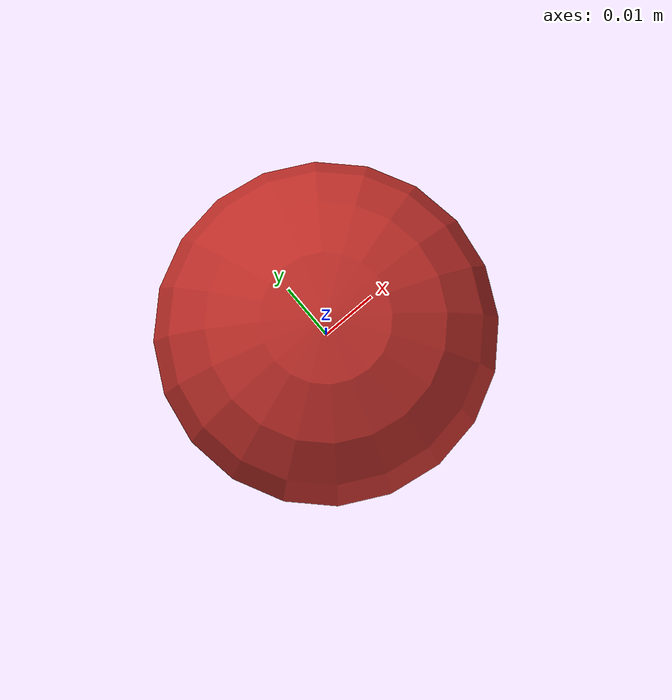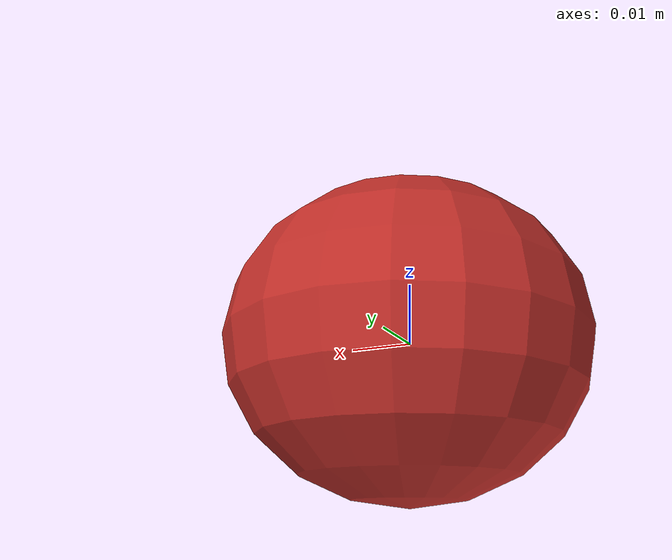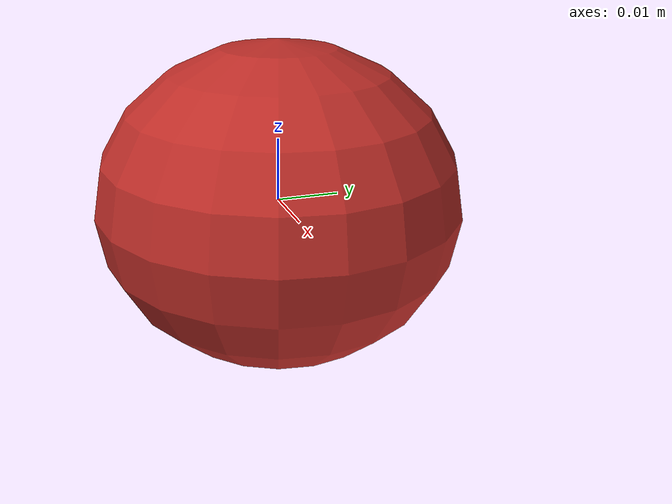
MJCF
<mujoco model="aipick_stage2_freefruit">

  <compiler angle="radian" autolimits="true"/>
  <option timestep="0.0041666667" gravity="0 0 0" integrator="Euler">
    <flag contact="disable"/>
  </option>

  <worldbody>
    <body name="fruit" pos="0 0 0">
      <freejoint name="free"/>
      <inertial pos="0 0 0" mass="0.0735807337962370"
                diaginertia="2.15835e-5 2.15835e-5 2.43276e-5"/>
      <geom name="apple" type="ellipsoid" size="0.02875 0.02875 0.02530"
            rgba="0.75 0.18 0.16 1"/>
    </body>
  </worldbody>
</mujoco>
